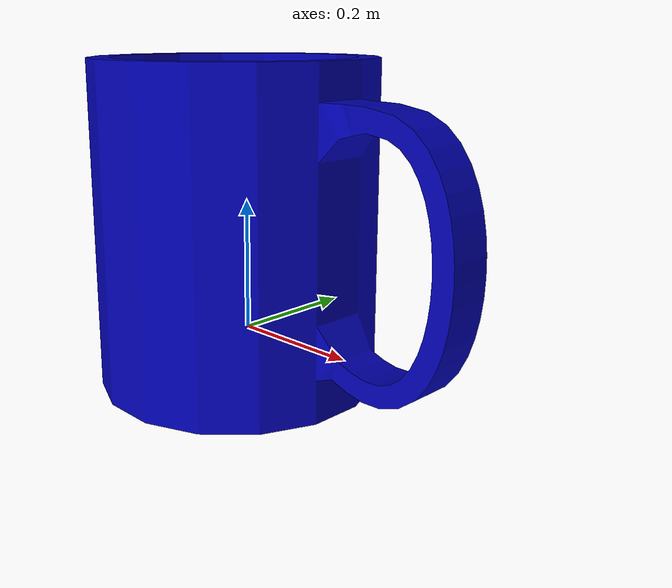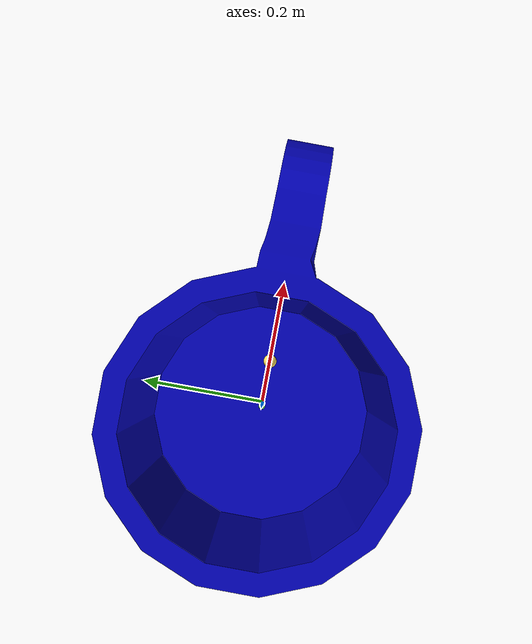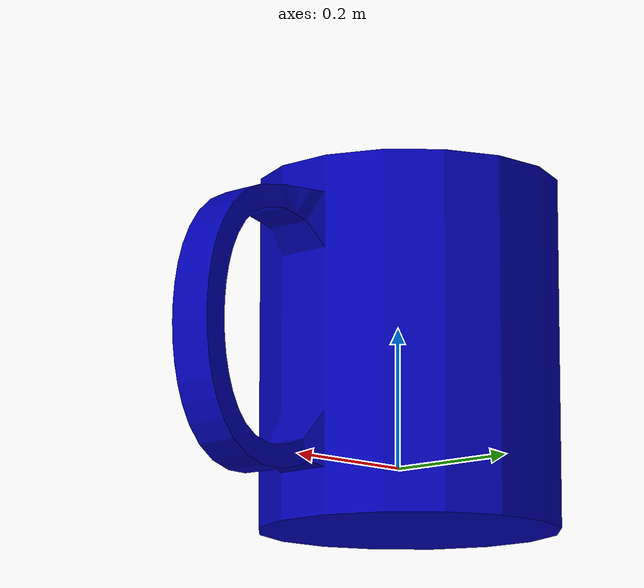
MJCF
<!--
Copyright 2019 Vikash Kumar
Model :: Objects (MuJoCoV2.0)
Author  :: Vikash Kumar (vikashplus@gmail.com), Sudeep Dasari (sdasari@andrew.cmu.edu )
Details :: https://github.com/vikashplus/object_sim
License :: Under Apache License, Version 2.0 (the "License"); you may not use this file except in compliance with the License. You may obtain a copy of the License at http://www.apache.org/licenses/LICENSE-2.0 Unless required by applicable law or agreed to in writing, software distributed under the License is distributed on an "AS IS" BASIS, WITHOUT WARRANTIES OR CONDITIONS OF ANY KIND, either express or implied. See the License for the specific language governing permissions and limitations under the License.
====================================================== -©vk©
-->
<mujoco model="mug">
  <compiler angle="radian" meshdir="."/>
  <asset>
    <material name="MatObject" specular="0.75" shininess="0.1" reflectance="0.5" rgba="0.9 0.7 0.5 1"/>
  </asset>

  <default>
    <default class="mesh">
      <mesh scale="2.5 2.5 2.5"/>
    </default>
    <default class="grab">
      <joint limited="false" margin="0.01" armature="0.001" damping="0" frictionloss="0.001"/>
      <geom type="mesh" rgba=".93 .99 .97 1.0"/>
      <site size="0.005 0 0" rgba="0.4 0.9 0.4 1"/>

      <default class="mug_visual">
        <geom contype="0" conaffinity="0"/>
      </default>

      <default class="mug_base">
        <geom type="mesh" density="1250" contype="1" conaffinity="1" friction="1 0.5 0.01" condim="4"
              rgba="1 0 0 1" group="3"/> <!-- margin="0.0005" Not yet supported by MJX -->
      </default>

      <default class="mug_trunk">
        <geom type="mesh" density="1250" contype="1" conaffinity="1" friction="1 0.5 0.01" condim="4"
              rgba="0 1 0 1" group="3"/> <!-- margin="0.0005" Not yet supported by MJX -->
      </default>

      <default class="mug_handle">
        <geom type="mesh" density="1250" contype="1" conaffinity="1" friction="1 0.5 0.01" condim="4"
              rgba="1 1 0 1" group="3"/> <!-- margin="0.0005" Not yet supported by MJX -->
      </default>

    </default>
  </default>

  <asset>
    <mesh name="mug" file="mug.stl" class="mesh"/>
    <mesh name="contact0" file="contact0.stl" class="mesh"/>
    <mesh name="contact1" file="contact1.stl" class="mesh"/>
    <mesh name="contact2" file="contact2.stl" class="mesh"/>
    <mesh name="contact3" file="contact3.stl" class="mesh"/>
    <mesh name="contact4" file="contact4.stl" class="mesh"/>
    <mesh name="contact5" file="contact5.stl" class="mesh"/>
    <mesh name="contact6" file="contact6.stl" class="mesh"/>
    <mesh name="contact7" file="contact7.stl" class="mesh"/>
    <mesh name="contact8" file="contact8.stl" class="mesh"/>
    <mesh name="contact9" file="contact9.stl" class="mesh"/>
    <mesh name="contact10" file="contact10.stl" class="mesh"/>
    <mesh name="contact11" file="contact11.stl" class="mesh"/>
    <mesh name="contact12" file="contact12.stl" class="mesh"/>
    <mesh name="contact13" file="contact13.stl" class="mesh"/>
  </asset>
  <worldbody>
    <body name="mug" pos="0 0 0.15" childclass="grab">
      <site name="mug"/>
      <geom name="mug_whole_visual" mesh="mug" rgba="0 0 0.7 1.0" class="mug_visual"/>
      <geom name="mug_trunk0" mesh="contact0" class="mug_trunk"/>
      <geom name="mug_trunk1" mesh="contact1" class="mug_trunk"/>
      <geom name="mug_trunk2" mesh="contact2" class="mug_trunk"/>
      <geom name="mug_trunk3" mesh="contact3" class="mug_trunk"/>
      <geom name="mug_trunk4" mesh="contact4" class="mug_trunk"/>
      <geom name="mug_trunk5" mesh="contact7" class="mug_trunk"/>
      <geom name="mug_base0" mesh="contact5" class="mug_base"/>
      <geom name="mug_base1" mesh="contact6" class="mug_base"/>
      <geom name="mug_base2" mesh="contact8" class="mug_base"/>
      <geom name="mug_base3" mesh="contact9" class="mug_base"/>
      <geom name="mug_handle0" mesh="contact10" class="mug_handle"/>
      <geom name="mug_handle1" mesh="contact11" class="mug_handle"/>
      <geom name="mug_handle2" mesh="contact12" class="mug_handle"/>
      <geom name="mug_handle3" mesh="contact13" class="mug_handle"/>
      <site name="mug_handle_center" pos="0.07 0 0.01" size="0.01 0.01 0.01" rgba="1 0.9 0.4 1"/>
    </body>
  </worldbody>
</mujoco>
